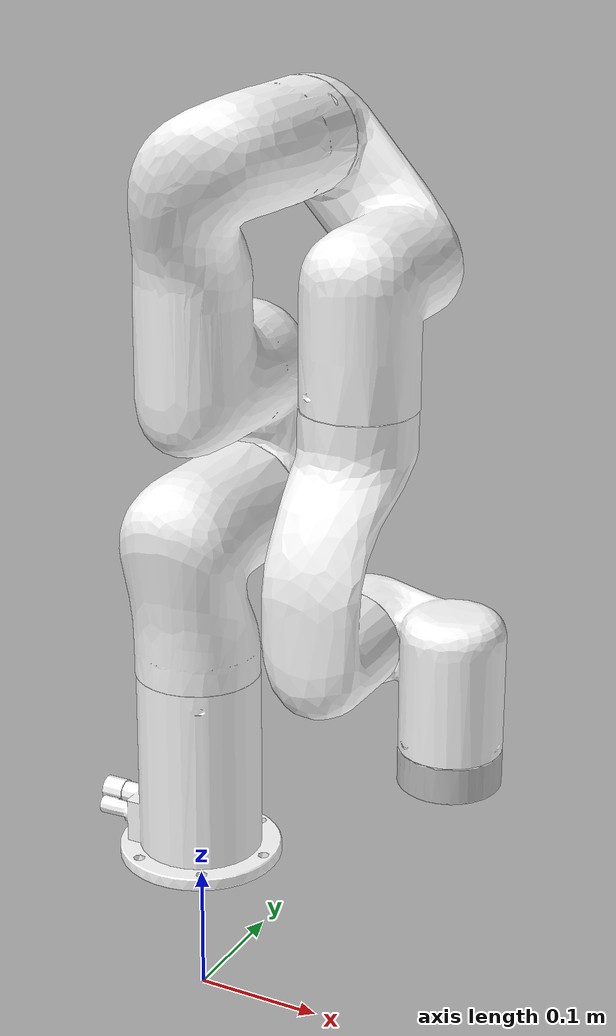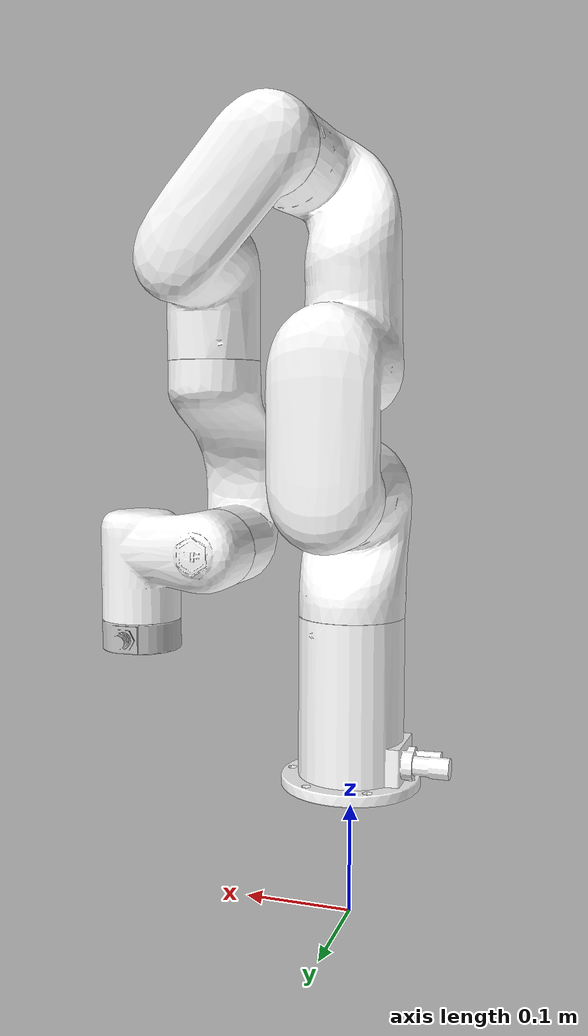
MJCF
<mujoco model="xarm6 nohand">
  <compiler angle="radian" autolimits="true"/>

  <option integrator="implicitfast"/>

  <asset>
    <material name="white" rgba="1 1 1 1"/>
    <material name="gray" rgba="0.753 0.753 0.753 1"/>

    <mesh file="visual/link_base.stl" name="link_base"/>
    <mesh file="visual/link1.stl" name="link1"/>
    <mesh file="visual/link2.stl" name="link2"/>
    <mesh file="visual/link3.stl" name="link3"/>
    <mesh file="visual/link4.stl" name="link4"/>
    <mesh file="visual/link5.stl" name="link5"/>
    <mesh file="visual/link6.stl" name="link6"/>
  </asset>

  <default>
    <default class="xarm6">
      <geom type="mesh" material="white"/>
      <joint axis="0 0 1" armature="0.1" range="-6.28319 6.28319" frictionloss="1"/>
      <general biastype="affine" ctrlrange="-6.28319 6.28319"/>
      <default class="size1">
        <joint damping="10"/>
        <general gainprm="1500" biasprm="0 -1500 -150" forcerange="-50 50"/>
      </default>
      <default class="size2">
        <joint damping="5"/>
        <general gainprm="1000" biasprm="0 -1000 -100" forcerange="-32 32"/>
      </default>
      <default class="size3">
        <joint damping="2"/>
        <general gainprm="800" biasprm="0 -800 -80" forcerange="-20 20"/>
      </default>
      <site size="0.001" rgba="1 0 0 1" group="4"/>
    </default>
  </default>

  <worldbody>
    <body name="link_base" pos="0 0 .12" childclass="xarm6">
      <inertial pos="0 0 0.09103" mass="2.7"
        diaginertia="0.00494875 0.00494174 0.002219"/>
      <geom mesh="link_base"/>
      <body name="link1" pos="0 0 0.267">
        <inertial pos="-0.0002 0.02905 -0.01233" quat="0.978953 -0.202769 -0.00441617 -0.0227264" mass="2.382"
          diaginertia="0.00569127 0.00533384 0.00293865"/>
        <joint name="joint1" class="size1"/>
        <geom mesh="link1"/>
        <body name="link2" quat="0.7071068 -0.7071068 0 0">
          <inertial pos="0.00022 -0.12856 0.01735" quat="0.50198 0.86483 -0.00778841 0.00483285" mass="1.869"
            diaginertia="0.00959898 0.00937717 0.00201315"/>
          <joint name="joint2" range="-2.059 2.0944" class="size1"/>
          <geom mesh="link2"/>
          <body name="link3" pos="0.0535 -0.2845 0">
            <inertial pos="0.0466 -0.02463 -0.00768" quat="0.913819 0.289775 0.281481 -0.0416455" mass="1.6383"
              diaginertia="0.00351721 0.00294089 0.00195868"/>
            <joint name="joint3" range="-3.927 0.19198" class="size2"/>
            <geom mesh="link3"/>
            <body name="link4" pos="0.0775 0.3425 0" quat="0.7071068 -0.7071068 0 0">
              <inertial pos="0.07047 -0.11575 0.012" quat="0.422108 0.852026 -0.126025 0.282832" mass="1.7269"
                diaginertia="0.00657137 0.00647948 0.00186763"/>
              <joint name="joint4" class="size2"/>
              <geom mesh="link4"/>
              <body name="link5" quat="0.7071068 0.7071068 0 0">
                <inertial pos="-0.00032 0.01604 -0.026" quat="0.999311 -0.0304457 0.000577067 0.0212082" mass="1.3203"
                  diaginertia="0.00534729 0.00499076 0.0013489"/>
                <joint name="joint5" range="-1.69297 3.14159" class="size2"/>
                <geom mesh="link5"/>
                <body name="link6" pos="0.076 0.097 0" quat="0.7071068 -0.7071068 0 0">
                  <inertial pos="0 -0.00677 -0.01098" quat="0.487612 0.512088 -0.512088 0.487612" mass="0.17"
                    diaginertia="0.000132176 9.3e-05 5.85236e-05"/>
                  <joint name="joint6" class="size3"/>
                  <geom material="gray" mesh="link6"/>
                  <site name="attachment_site"/>
                </body>
              </body>
            </body>
          </body>
        </body>
      </body>
    </body>
  </worldbody>

  <actuator>
    <general name="act1" joint="joint1" class="size1"/>
    <general name="act2" joint="joint2" class="size1" ctrlrange="-2.059 2.0944"/>
    <general name="act3" joint="joint3" class="size2" ctrlrange="-3.927 0.19198"/>
    <general name="act4" joint="joint4" class="size2"/>
    <general name="act5" joint="joint5" class="size2" ctrlrange="-1.69297 3.14159"/>
    <general name="act6" joint="joint6" class="size3"/>
  </actuator>

  <keyframe>
    <key name="home" qpos="0 0 0 0 0 0" ctrl="0 0 0 0 0 0"/>
  </keyframe>
</mujoco>
